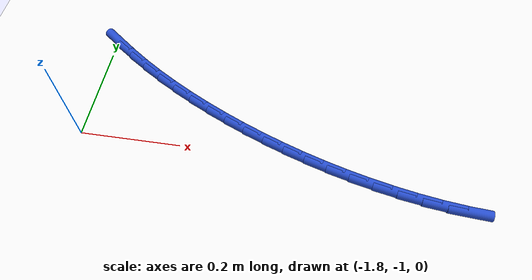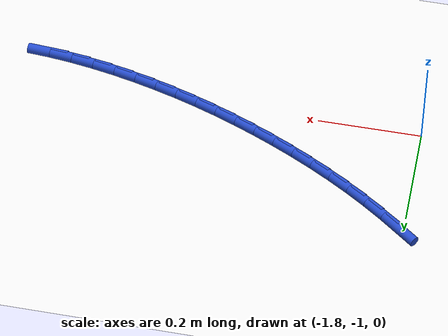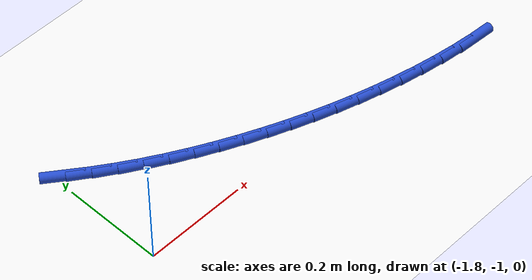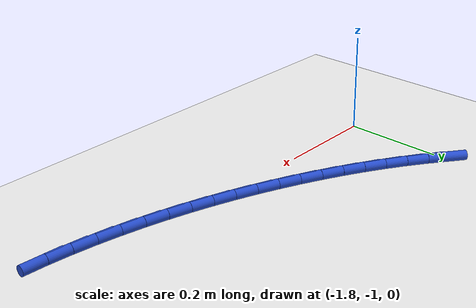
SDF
<sdf version="1.6">
 <world name="default">
  <model name="ground_plane">
   <static>1</static>
   <link name="link">
    <collision name="collision">
     <geometry><plane><normal>0 0 1</normal><size>100 100</size></plane></geometry>
     <surface><friction><ode><mu>100</mu><mu2>50</mu2></ode></friction></surface>
    </collision>
    <visual name="visual">
     <cast_shadows>0</cast_shadows>
     <geometry><plane><normal>0 0 1</normal><size>100 100</size></plane></geometry>
     <material>
      <script><uri>file://media/materials/scripts/gazebo.material</uri><name>Gazebo/WhiteGlow</name></script>
     </material>
    </visual>
   </link>
  </model>
  <model name="line">
   <link name="link_95">
    <pose>-1.7916403139034685 -0.7675067785391615 0.01 0 1.57 -0.6476387385110818</pose>
    <collision name="collision">
     <geometry><cylinder><radius>0.01</radius><length>0.08</length></cylinder></geometry>
    </collision>
    <visual name="visual">
     <material>
      <script><name>Gazebo/Blue</name><uri>file://media/materials/scripts/gazebo.material</uri></script>
     </material>
     <geometry><cylinder><radius>0.01</radius><length>0.08</length></cylinder></geometry>
    </visual>
   </link>
   <link name="link_96">
    <pose>-1.7559232148351653 -0.7945262356743797 0.01 0 1.57 -0.6090272990380989</pose>
    <collision name="collision">
     <geometry><cylinder><radius>0.01</radius><length>0.08</length></cylinder></geometry>
    </collision>
    <visual name="visual">
     <material>
      <script><name>Gazebo/Blue</name><uri>file://media/materials/scripts/gazebo.material</uri></script>
     </material>
     <geometry><cylinder><radius>0.01</radius><length>0.08</length></cylinder></geometry>
    </visual>
   </link>
   <link name="link_97">
    <pose>-1.7191718274464662 -0.8201592990511254 0.01 0 1.57 -0.5726153974571435</pose>
    <collision name="collision">
     <geometry><cylinder><radius>0.01</radius><length>0.08</length></cylinder></geometry>
    </collision>
    <visual name="visual">
     <material>
      <script><name>Gazebo/Blue</name><uri>file://media/materials/scripts/gazebo.material</uri></script>
     </material>
     <geometry><cylinder><radius>0.01</radius><length>0.08</length></cylinder></geometry>
    </visual>
   </link>
   <link name="link_98">
    <pose>-1.6814986579725484 -0.8444458602444217 0.01 0 1.57 -0.5383243103273663</pose>
    <collision name="collision">
     <geometry><cylinder><radius>0.01</radius><length>0.08</length></cylinder></geometry>
    </collision>
    <visual name="visual">
     <material>
      <script><name>Gazebo/Blue</name><uri>file://media/materials/scripts/gazebo.material</uri></script>
     </material>
     <geometry><cylinder><radius>0.01</radius><length>0.08</length></cylinder></geometry>
    </visual>
   </link>
   <link name="link_99">
    <pose>-1.6430162126485888 -0.8674258108292948 0.01 0 1.57 -0.5060642195150532</pose>
    <collision name="collision">
     <geometry><cylinder><radius>0.01</radius><length>0.08</length></cylinder></geometry>
    </collision>
    <visual name="visual">
     <material>
      <script><name>Gazebo/Blue</name><uri>file://media/materials/scripts/gazebo.material</uri></script>
     </material>
     <geometry><cylinder><radius>0.01</radius><length>0.08</length></cylinder></geometry>
    </visual>
   </link>
   <link name="link_100">
    <pose>-1.6038369977097622 -0.8891390423807679 0.01 0 1.57 -0.47573870288867437</pose>
    <collision name="collision">
     <geometry><cylinder><radius>0.01</radius><length>0.08</length></cylinder></geometry>
    </collision>
    <visual name="visual">
     <material>
      <script><name>Gazebo/Blue</name><uri>file://media/materials/scripts/gazebo.material</uri></script>
     </material>
     <geometry><cylinder><radius>0.01</radius><length>0.08</length></cylinder></geometry>
    </visual>
   </link>
   <link name="link_101">
    <pose>-1.5640735193912485 -0.9096254464738661 0.01 0 1.57 -0.44724835719416417</pose>
    <collision name="collision">
     <geometry><cylinder><radius>0.01</radius><length>0.08</length></cylinder></geometry>
    </collision>
    <visual name="visual">
     <material>
      <script><name>Gazebo/Blue</name><uri>file://media/materials/scripts/gazebo.material</uri></script>
     </material>
     <geometry><cylinder><radius>0.01</radius><length>0.08</length></cylinder></geometry>
    </visual>
   </link>
   <link name="link_102">
    <pose>-1.523838283928222 -0.9289249146836144 0.01 0 1.57 -0.4203897838365184</pose>
    <collision name="collision">
     <geometry><cylinder><radius>0.01</radius><length>0.08</length></cylinder></geometry>
    </collision>
    <visual name="visual">
     <material>
      <script><name>Gazebo/Blue</name><uri>file://media/materials/scripts/gazebo.material</uri></script>
     </material>
     <geometry><cylinder><radius>0.01</radius><length>0.08</length></cylinder></geometry>
    </visual>
   </link>
   <link name="link_103">
    <pose>-1.4832368781838723 -0.9470753729937406 0.01 0 1.57 -0.3936628055108321</pose>
    <collision name="collision">
     <geometry><cylinder><radius>0.01</radius><length>0.08</length></cylinder></geometry>
    </collision>
    <visual name="visual">
     <material>
      <script><name>Gazebo/Blue</name><uri>file://media/materials/scripts/gazebo.material</uri></script>
     </material>
     <geometry><cylinder><radius>0.01</radius><length>0.08</length></cylinder></geometry>
    </visual>
   </link>
   <link name="link_104">
    <pose>-1.4422781941914236 -0.9640872792136264 0.01 0 1.57 -0.3660984885032152</pose>
    <collision name="collision">
     <geometry><cylinder><radius>0.01</radius><length>0.08</length></cylinder></geometry>
    </collision>
    <visual name="visual">
     <material>
      <script><name>Gazebo/Blue</name><uri>file://media/materials/scripts/gazebo.material</uri></script>
     </material>
     <geometry><cylinder><radius>0.01</radius><length>0.08</length></cylinder></geometry>
    </visual>
   </link>
   <link name="link_105">
    <pose>-1.4009000380599412 -0.979950897719777 0.01 0 1.57 -0.3378153479322067</pose>
    <collision name="collision">
     <geometry><cylinder><radius>0.01</radius><length>0.08</length></cylinder></geometry>
    </collision>
    <visual name="visual">
     <material>
      <script><name>Gazebo/Blue</name><uri>file://media/materials/scripts/gazebo.material</uri></script>
     </material>
     <geometry><cylinder><radius>0.01</radius><length>0.08</length></cylinder></geometry>
    </visual>
   </link>
   <link name="link_106">
    <pose>-1.359038570775415 -0.9946560255573244 0.01 0 1.57 -0.30896860219570876</pose>
    <collision name="collision">
     <geometry><cylinder><radius>0.01</radius><length>0.08</length></cylinder></geometry>
    </collision>
    <visual name="visual">
     <material>
      <script><name>Gazebo/Blue</name><uri>file://media/materials/scripts/gazebo.material</uri></script>
     </material>
     <geometry><cylinder><radius>0.01</radius><length>0.08</length></cylinder></geometry>
    </visual>
   </link>
   <link name="link_107">
    <pose>-1.3166299533238301 -1.0081924597714025 0.01 0 1.57 -0.27972223555684433</pose>
    <collision name="collision">
     <geometry><cylinder><radius>0.01</radius><length>0.08</length></cylinder></geometry>
    </collision>
    <visual name="visual">
     <material>
      <script><name>Gazebo/Blue</name><uri>file://media/materials/scripts/gazebo.material</uri></script>
     </material>
     <geometry><cylinder><radius>0.01</radius><length>0.08</length></cylinder></geometry>
    </visual>
   </link>
   <link name="link_108">
    <pose>-1.2736103466911755 -1.0205499974071435 0.01 0 1.57 -0.2501968011561356</pose>
    <collision name="collision">
     <geometry><cylinder><radius>0.01</radius><length>0.08</length></cylinder></geometry>
    </collision>
    <visual name="visual">
     <material>
      <script><name>Gazebo/Blue</name><uri>file://media/materials/scripts/gazebo.material</uri></script>
     </material>
     <geometry><cylinder><radius>0.01</radius><length>0.08</length></cylinder></geometry>
    </visual>
   </link>
   <link name="link_109">
    <pose>-1.2299207285608817 -1.0317149476618737 0.01 0 1.57 -0.21941383656015556</pose>
    <collision name="collision">
     <geometry><cylinder><radius>0.01</radius><length>0.08</length></cylinder></geometry>
    </collision>
    <visual name="visual">
     <material>
      <script><name>Gazebo/Blue</name><uri>file://media/materials/scripts/gazebo.material</uri></script>
     </material>
     <geometry><cylinder><radius>0.01</radius><length>0.08</length></cylinder></geometry>
    </visual>
   </link>
   <link name="link_110">
    <pose>-1.1856081084120977 -1.0415968404104572 0.01 0 1.57 -0.18612941095048716</pose>
    <collision name="collision">
     <geometry><cylinder><radius>0.01</radius><length>0.08</length></cylinder></geometry>
    </collision>
    <visual name="visual">
     <material>
      <script><name>Gazebo/Blue</name><uri>file://media/materials/scripts/gazebo.material</uri></script>
     </material>
     <geometry><cylinder><radius>0.01</radius><length>0.08</length></cylinder></geometry>
    </visual>
   </link>
   <link name="link_111">
    <pose>-1.1408229527127625 -1.050030290664258 0.01 0 1.57 -0.14999713352815805</pose>
    <collision name="collision">
     <geometry><cylinder><radius>0.01</radius><length>0.08</length></cylinder></geometry>
    </collision>
    <visual name="visual">
     <material>
      <script><name>Gazebo/Blue</name><uri>file://media/materials/scripts/gazebo.material</uri></script>
     </material>
     <geometry><cylinder><radius>0.01</radius><length>0.08</length></cylinder></geometry>
    </visual>
   </link>
   <link name="link_112">
    <pose>-1.0957200295693101 -1.0568467985492704 0.01 0 1.57 -0.11069036252026408</pose>
    <collision name="collision">
     <geometry><cylinder><radius>0.01</radius><length>0.08</length></cylinder></geometry>
    </collision>
    <visual name="visual">
     <material>
      <script><name>Gazebo/Blue</name><uri>file://media/materials/scripts/gazebo.material</uri></script>
     </material>
     <geometry><cylinder><radius>0.01</radius><length>0.08</length></cylinder></geometry>
    </visual>
   </link>
   <link name="link_113">
    <pose>-1.0504541070881739 -1.0618778641914894 0.01 0 1.57 -0.06786208396645799</pose>
    <collision name="collision">
     <geometry><cylinder><radius>0.01</radius><length>0.08</length></cylinder></geometry>
    </collision>
    <visual name="visual">
     <material>
      <script><name>Gazebo/Blue</name><uri>file://media/materials/scripts/gazebo.material</uri></script>
     </material>
     <geometry><cylinder><radius>0.01</radius><length>0.08</length></cylinder></geometry>
    </visual>
   </link>
  </model>
 </world>
</sdf>
